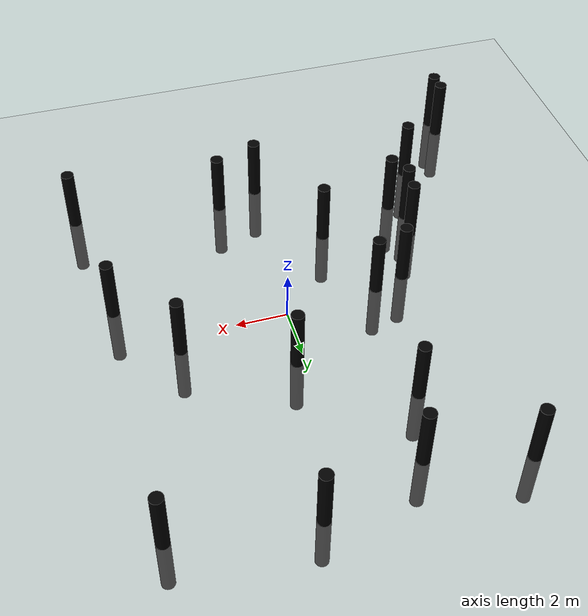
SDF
<?xml version="1.0"?>

<sdf version="1.6">
    <world name="world2">
        <gravity>0 0 0</gravity>
        <physics name="4ms" type="ignored">
            <max_step_size>0.004</max_step_size>
            <real_time_factor>1.0</real_time_factor>
        </physics>
        <plugin
            filename="ignition-gazebo-physics-system"
            name="ignition::gazebo::systems::Physics">
        </plugin>
        <plugin
            filename="ignition-gazebo-scene-broadcaster-system"
            name="ignition::gazebo::systems::SceneBroadcaster">
        </plugin>
        <plugin
            filename="ignition-gazebo-user-commands-system"
            name="ignition::gazebo::systems::UserCommands">
        </plugin>
        <plugin
            filename="ignition-gazebo-sensors-system"
            name="ignition::gazebo::systems::Sensors">
            <render_engine>ogre2</render_engine>
        </plugin>

        <include>
            <uri>model://ground_plane</uri>
        </include>
        <include>
            <uri>model://pole</uri>
            <name>pole1</name>
            <pose>-0.66 -7.42 0 0 0 0</pose>
        </include>
        <include>
            <uri>model://pole</uri>
            <name>pole2</name>
            <pose>-2.54 7.63 0 0 0 0</pose>
        </include>
        <include>
            <uri>model://pole</uri>
            <name>pole3</name>
            <pose>-6.26 -4.18 0 0 0 0</pose>
        </include>
        <include>
            <uri>model://pole</uri>
            <name>pole4</name>
            <pose>-4.91 -0.87 0 0 0 0</pose>
        </include>
        <include>
            <uri>model://pole</uri>
            <name>pole5</name>
            <pose>-9.57 -9.9 0 0 0 0</pose>
        </include>
        <include>
            <uri>model://pole</uri>
            <name>pole6</name>
            <pose>-2.61 -3.93 0 0 0 0</pose>
        </include>
        <include>
            <uri>model://pole</uri>
            <name>pole7</name>
            <pose>-5.8 -4.94 0 0 0 0</pose>
        </include>
        <include>
            <uri>model://pole</uri>
            <name>pole8</name>
            <pose>-7.21 -6.85 0 0 0 0</pose>
        </include>
        <include>
            <uri>model://pole</uri>
            <name>pole9</name>
            <pose>1.03 -6.82 0 0 0 0</pose>
        </include>
        <include>
            <uri>model://pole</uri>
            <name>pole10</name>
            <pose>-6.08 -3.14 0 0 0 0</pose>
        </include>
        <include>
            <uri>model://pole</uri>
            <name>pole11</name>
            <pose>0.31 2.34 0 0 0 0</pose>
        </include>
        <include>
            <uri>model://pole</uri>
            <name>pole12</name>
            <pose>-3.7 -0.49 0 0 0 0</pose>
        </include>
        <include>
            <uri>model://pole</uri>
            <name>pole13</name>
            <pose>4.27 0.62 0 0 0 0</pose>
        </include>
        <include>
            <uri>model://pole</uri>
            <name>pole14</name>
            <pose>1.36 8.98 0 0 0 0</pose>
        </include>
        <include>
            <uri>model://pole</uri>
            <name>pole15</name>
            <pose>-9.6 -9.21 0 0 0 0</pose>
        </include>
        <include>
            <uri>model://pole</uri>
            <name>pole16</name>
            <pose>-6.23 8.51 0 0 0 0</pose>
        </include>
        <include>
            <uri>model://pole</uri>
            <name>pole17</name>
            <pose>6.51 8.4 0 0 0 0</pose>
        </include>
        <include>
            <uri>model://pole</uri>
            <name>pole18</name>
            <pose>-3.42 4.92 0 0 0 0</pose>
        </include>
        <include>
            <uri>model://pole</uri>
            <name>pole19</name>
            <pose>6.34 -1.94 0 0 0 0</pose>
        </include>
        <include>
            <uri>model://pole</uri>
            <name>pole20</name>
            <pose>6.98 -7.47 0 0 0 0</pose>
        </include>

    </world>
</sdf>

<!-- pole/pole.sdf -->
<sdf version="1.9">
    <model name="pole">
        <link name="pole_link">

            <visual name='visual'>
                <geometry>
                    <cylinder>
                        <radius>0.25</radius>
                        <length>5.0</length>
                    </cylinder>
                </geometry>
                <material>
                    <diffuse>0 0 0 1</diffuse>
                </material>
            </visual>

            <inertial>
                <mass>0.005</mass>
                <inertia>
                    <ixx>8.33e-06</ixx>
                    <ixy>0</ixy>
                    <ixz>0</ixz>
                    <iyy>8.33e-06</iyy>
                    <iyz>0</iyz>
                    <izz>8.33e-06</izz>
                </inertia>
            </inertial>

        </link>
        <frame name="mount_point"/>

        <joint name="world_to_base_link=" type="fixed">
            <parent>world</parent>
            <child>pole_link</child>
        </joint>
    </model>
</sdf>
